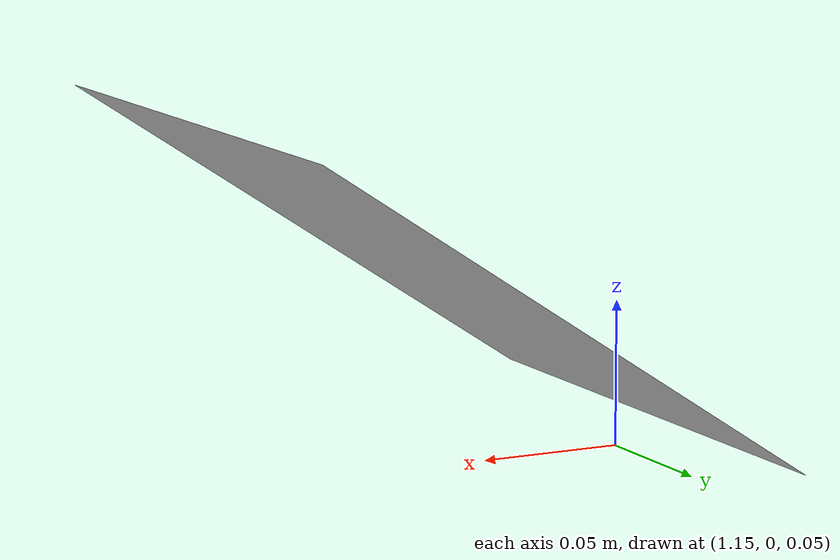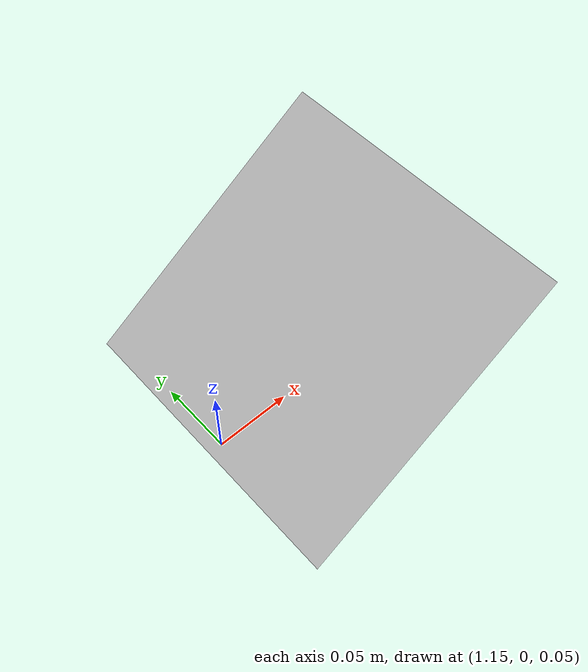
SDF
<?xml version="1.0" ?>
<sdf version="1.4">
  <model name="aruco">
    <pose>1.165203 0.033734 0.077975  0.583358 0 -1.578856</pose>
     <static>true</static>
    <link name="link">
      <collision name="collision">
        <geometry>
          <mesh>
            <uri>model://aruco/aruco.DAE</uri>
          </mesh>
        </geometry>
      </collision>
      <visual name="visual">
        <geometry>
          <mesh>
            <uri>model://aruco/aruco.DAE</uri>
          </mesh>
        </geometry>
      </visual>
    </link>
  </model>
</sdf>
